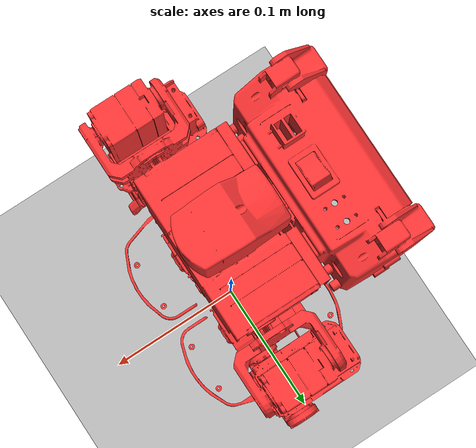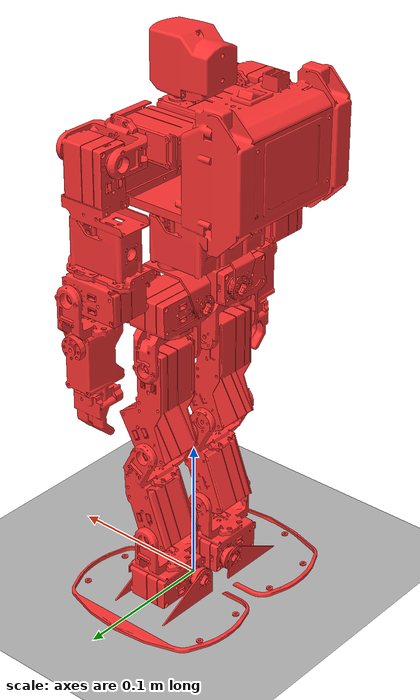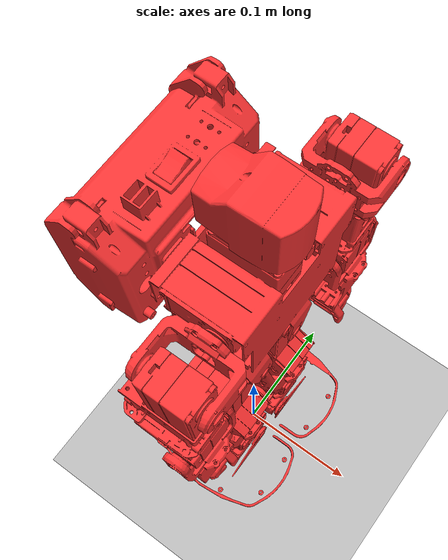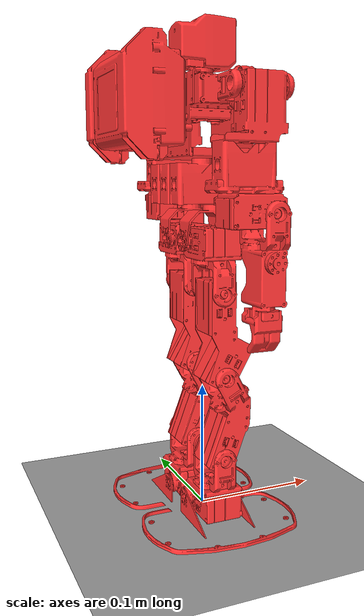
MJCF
<mujoco model="(KHR)">
  <!--
   This file is automatically created from ("KHR") model by eus2mjcf.l.
   -->
  <compiler angle="radian" convexhull="false"/>
  <option timestep="0.001" iterations="50" tolerance="1.000000e-10" solver="Newton" jacobian="dense" cone="pyramidal" density="1000" viscosity="0.0009" collision="predefined"/>
  <default>
    <geom condim="3" solref="0.02 1.0"/>
    <joint frictionloss="0.2" armature="0.011"/>
  </default>
  <size nconmax="1000" njmax="5000" nstack="1000000"/>
  <worldbody>
    <geom name="floor" pos="0 0 0" size="3 3 1" type="plane" material="matplane" condim="3"/>
  </worldbody>
  <asset>
    <texture name="texplane" type="2d" builtin="checker" rgb1=".8 .8 .8" rgb2=".6 0.6 0.6" width="512" height="512" mark="cross" markrgb=".8 .8 .8"/>
    <material name="matplane" reflectance="0.3" texture="texplane" texrepeat="1 1" texuniform="true"/>
  </asset>
  <include file="KHR/KHRinc.xml"/>
</mujoco>

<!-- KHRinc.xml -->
<mujocoinclude>
  <!--
   This file is automatically created from "KHR" model by eus2mjcf.l.
   -->
  <asset>
    <mesh name="KHR_BODY_0_mesh" file="KHR/BODY_0_mesh.stl"/>
    <mesh name="KHR_RLEG_LINK0_0_mesh" file="KHR/RLEG_LINK0_0_mesh.stl"/>
    <mesh name="KHR_RLEG_LINK1_0_mesh" file="KHR/RLEG_LINK1_0_mesh.stl"/>
    <mesh name="KHR_RLEG_LINK2_0_mesh" file="KHR/RLEG_LINK2_0_mesh.stl"/>
    <mesh name="KHR_RLEG_LINK3_0_mesh" file="KHR/RLEG_LINK3_0_mesh.stl"/>
    <mesh name="KHR_RLEG_LINK4_0_mesh" file="KHR/RLEG_LINK4_0_mesh.stl"/>
    <mesh name="KHR_LLEG_LINK0_0_mesh" file="KHR/LLEG_LINK0_0_mesh.stl"/>
    <mesh name="KHR_LLEG_LINK1_0_mesh" file="KHR/LLEG_LINK1_0_mesh.stl"/>
    <mesh name="KHR_LLEG_LINK2_0_mesh" file="KHR/LLEG_LINK2_0_mesh.stl"/>
    <mesh name="KHR_LLEG_LINK3_0_mesh" file="KHR/LLEG_LINK3_0_mesh.stl"/>
    <mesh name="KHR_LLEG_LINK4_0_mesh" file="KHR/LLEG_LINK4_0_mesh.stl"/>
    <mesh name="KHR_RARM_LINK0_0_mesh" file="KHR/RARM_LINK0_0_mesh.stl"/>
    <mesh name="KHR_RARM_LINK1_0_mesh" file="KHR/RARM_LINK1_0_mesh.stl"/>
    <mesh name="KHR_RARM_LINK2_0_mesh" file="KHR/RARM_LINK2_0_mesh.stl"/>
    <mesh name="KHR_LARM_LINK0_0_mesh" file="KHR/LARM_LINK0_0_mesh.stl"/>
    <mesh name="KHR_LARM_LINK1_0_mesh" file="KHR/LARM_LINK1_0_mesh.stl"/>
    <mesh name="KHR_LARM_LINK2_0_mesh" file="KHR/LARM_LINK2_0_mesh.stl"/>
    <mesh name="KHR_HEAD_LINK0_0_mesh" file="KHR/HEAD_LINK0_0_mesh.stl"/>
  </asset>
  <worldbody>
    <body name="KHR/BODY" pos="0.0 0.0 0.283" quat="1.0 0.0 0.0 0.0">
      <inertial pos="-0.025246 0.0 0.017693" quat="1.0 0.0 0.0 0.0" mass="0.3375" diaginertia="0.014489 0.013812 0.009164"/>
      <joint name="KHR/root" type="free"/>
      <geom pos="0 0 0" type="mesh" mesh="KHR_BODY_0_mesh" rgba="1.0 0.2 0.2 1.0"/>
      <body name="KHR/RLEG_LINK0" pos="0.018517 -0.017 -0.06265">
        <inertial pos="-0.021734 -0.011506 -0.014091" mass="0.0699" fullinertia="1.677061e-05 1.593509e-05 8.901412e-06 3.090629e-07 -9.063682e-08 -1.858810e-07"/>
        <joint name="KHR/rleg_joint0" pos="0 0 0" axis="1.0 0.0 0.0" limited="true" range="-0.499513 0.679172" damping="0.2"/>
        <geom pos="0 0 0" type="mesh" mesh="KHR_RLEG_LINK0_0_mesh" rgba="1.0 0.2 0.2 1.0"/>
        <body name="KHR/RLEG_LINK1" pos="-0.0192 0.00825 -0.0385">
          <inertial pos="0.002871 -0.018978 -0.033258" mass="0.1031" fullinertia="5.536819e-05 5.496839e-05 1.572300e-05 1.797274e-07 1.504320e-07 -1.263233e-07"/>
          <joint name="KHR/rleg_joint1" pos="0 0 0" axis="0.0 1.0 0.0" limited="true" range="-2.07933 2.08228" damping="0.2"/>
          <geom pos="0 0 0" type="mesh" mesh="KHR_RLEG_LINK1_0_mesh" rgba="1.0 0.2 0.2 1.0"/>
          <body name="KHR/RLEG_LINK2" pos="4.440892e-19 0.0 -0.065">
            <inertial pos="0.003613 -0.016674 -0.031461" mass="0.0694" fullinertia="3.881635e-05 3.515624e-05 1.384805e-05 -4.036985e-09 -8.683362e-07 -8.444422e-08"/>
            <joint name="KHR/rleg_joint2" pos="0 0 0" axis="0.0 1.0 0.0" limited="true" range="-1.06499 2.80504" damping="0.2"/>
            <geom pos="0 0 0" type="mesh" mesh="KHR_RLEG_LINK2_0_mesh" rgba="1.0 0.2 0.2 1.0"/>
            <body name="KHR/RLEG_LINK3" pos="0.0 0.0 -0.065">
              <inertial pos="-0.000386 -0.016666 -0.024369" mass="0.0691" fullinertia="2.079107e-05 1.818282e-05 1.182965e-05 -1.954314e-07 9.835033e-08 8.030392e-08"/>
              <joint name="KHR/rleg_joint3" pos="0 0 0" axis="0.0 1.0 0.0" limited="true" range="-1.6941 2.45985" damping="0.2"/>
              <geom pos="0 0 0" type="mesh" mesh="KHR_RLEG_LINK3_0_mesh" rgba="1.0 0.2 0.2 1.0"/>
              <body name="KHR/RLEG_LINK4" pos="0.019683 -0.00825 -0.0385">
                <inertial pos="-0.020862 -0.020902 -0.013459" mass="0.0419" fullinertia="1.244167e-05 3.000214e-05 3.927426e-05 -6.004987e-07 1.042822e-07 -5.792671e-07"/>
                <joint name="KHR/rleg_joint4" pos="0 0 0" axis="1.0 0.0 0.0" limited="true" range="-0.38347 2.07109" damping="0.2"/>
                <geom pos="0 0 0" type="mesh" mesh="KHR_RLEG_LINK4_0_mesh" rgba="1.0 0.2 0.2 1.0"/>
              </body>
            </body>
          </body>
        </body>
      </body>
      <body name="KHR/LLEG_LINK0" pos="0.018517 0.017 -0.06265">
        <inertial pos="-0.021734 0.011506 -0.014091" mass="0.0699" fullinertia="1.691904e-05 1.589483e-05 9.628598e-06 -8.674622e-08 -1.217244e-08 -5.717395e-07"/>
        <joint name="KHR/lleg_joint0" pos="0 0 0" axis="1.0 0.0 0.0" limited="true" range="-0.679172 0.499513" damping="0.2"/>
        <geom pos="0 0 0" type="mesh" mesh="KHR_LLEG_LINK0_0_mesh" rgba="1.0 0.2 0.2 1.0"/>
        <body name="KHR/LLEG_LINK1" pos="-0.0192 -0.00825 -0.0385">
          <inertial pos="0.002871 0.018978 -0.033258" mass="0.1031" fullinertia="5.516745e-05 5.510010e-05 1.421070e-05 -4.331385e-07 1.607866e-07 2.792756e-08"/>
          <joint name="KHR/lleg_joint1" pos="0 0 0" axis="0.0 1.0 0.0" limited="true" range="-2.07933 2.08228" damping="0.2"/>
          <geom pos="0 0 0" type="mesh" mesh="KHR_LLEG_LINK1_0_mesh" rgba="1.0 0.2 0.2 1.0"/>
          <body name="KHR/LLEG_LINK2" pos="4.440892e-19 0.0 -0.065">
            <inertial pos="0.003613 0.016674 -0.031461" mass="0.0694" fullinertia="3.675002e-05 3.375774e-05 1.292444e-05 -1.698369e-07 -8.700617e-07 -1.300457e-07"/>
            <joint name="KHR/lleg_joint2" pos="0 0 0" axis="0.0 1.0 0.0" limited="true" range="-1.06499 2.80504" damping="0.2"/>
            <geom pos="0 0 0" type="mesh" mesh="KHR_LLEG_LINK2_0_mesh" rgba="1.0 0.2 0.2 1.0"/>
            <body name="KHR/LLEG_LINK3" pos="0.0 0.0 -0.065">
              <inertial pos="-0.000386 0.016666 -0.024369" mass="0.0691" fullinertia="1.897253e-05 1.736952e-05 1.229215e-05 -5.304641e-08 -3.889940e-07 -1.934696e-08"/>
              <joint name="KHR/lleg_joint3" pos="0 0 0" axis="0.0 1.0 0.0" limited="true" range="-1.6941 2.45985" damping="0.2"/>
              <geom pos="0 0 0" type="mesh" mesh="KHR_LLEG_LINK3_0_mesh" rgba="1.0 0.2 0.2 1.0"/>
              <body name="KHR/LLEG_LINK4" pos="0.019683 0.00825 -0.0385">
                <inertial pos="-0.020862 0.020902 -0.013459" mass="0.0419" fullinertia="1.314386e-05 2.756289e-05 3.784923e-05 -3.433047e-09 -2.132639e-07 3.998076e-07"/>
                <joint name="KHR/lleg_joint4" pos="0 0 0" axis="1.0 0.0 0.0" limited="true" range="-2.07109 0.38347" damping="0.2"/>
                <geom pos="0 0 0" type="mesh" mesh="KHR_LLEG_LINK4_0_mesh" rgba="1.0 0.2 0.2 1.0"/>
              </body>
            </body>
          </body>
        </body>
      </body>
      <body name="KHR/RARM_LINK0" pos="0.0115 -0.049 0.0474">
        <inertial pos="0.0 -0.014576 0.0" mass="0.0153" fullinertia="1.676300e-06 2.263070e-06 2.745542e-06 -1.676607e-08 -9.953316e-09 1.992639e-09"/>
        <joint name="KHR/rarm_joint0" pos="0 0 0" axis="0.0 1.0 0.0" limited="true" range="-3.14159 3.14159" damping="0.2"/>
        <geom pos="0 0 0" type="mesh" mesh="KHR_RARM_LINK0_0_mesh" rgba="1.0 0.2 0.2 1.0"/>
        <body name="KHR/RARM_LINK1" pos="0.01975 -0.0255 0.0">
          <inertial pos="-0.02697 0.000148 -0.050609" mass="0.1091" fullinertia="8.202454e-05 9.300714e-05 2.322636e-05 1.686368e-07 -2.811838e-06 1.004118e-06"/>
          <joint name="KHR/rarm_joint1" pos="0 0 0" axis="1.0 0.0 0.0" limited="true" range="-3.14159 3.14159" damping="0.2"/>
          <geom pos="0 0 0" type="mesh" mesh="KHR_RARM_LINK1_0_mesh" rgba="1.0 0.2 0.2 1.0"/>
          <body name="KHR/RARM_LINK2" pos="-0.0153 0.0197 -0.0875">
            <inertial pos="0.000525 -0.019115 -0.039067" mass="0.0315" fullinertia="2.015857e-05 1.836502e-05 4.027569e-06 -1.189855e-07 7.558438e-08 5.071892e-07"/>
            <joint name="KHR/rarm_joint2" pos="0 0 0" axis="0.0 1.0 0.0" limited="true" range="-3.14159 3.14159" damping="0.2"/>
            <geom pos="0 0 0" type="mesh" mesh="KHR_RARM_LINK2_0_mesh" rgba="1.0 0.2 0.2 1.0"/>
          </body>
        </body>
      </body>
      <body name="KHR/LARM_LINK0" pos="0.0115 0.049 0.0474">
        <inertial pos="0.0 0.014576 0.0" mass="0.0153" fullinertia="1.642384e-06 2.269218e-06 2.753356e-06 -4.398995e-09 2.131338e-08 -3.478219e-09"/>
        <joint name="KHR/larm_joint0" pos="0 0 0" axis="0.0 1.0 0.0" limited="true" range="-3.14159 3.14159" damping="0.2"/>
        <geom pos="0 0 0" type="mesh" mesh="KHR_LARM_LINK0_0_mesh" rgba="1.0 0.2 0.2 1.0"/>
        <body name="KHR/LARM_LINK1" pos="0.01975 0.0255 0.0">
          <inertial pos="-0.02697 -0.000148 -0.050609" mass="0.1091" fullinertia="8.956372e-05 0.000102 2.505552e-05 1.200601e-08 -3.451890e-06 -4.050433e-07"/>
          <joint name="KHR/larm_joint1" pos="0 0 0" axis="1.0 0.0 0.0" limited="true" range="-3.14159 3.14159" damping="0.2"/>
          <geom pos="0 0 0" type="mesh" mesh="KHR_LARM_LINK1_0_mesh" rgba="1.0 0.2 0.2 1.0"/>
          <body name="KHR/LARM_LINK2" pos="-0.0153 -0.0197 -0.0875">
            <inertial pos="0.000525 0.019115 -0.039067" mass="0.0315" fullinertia="2.063503e-05 1.949743e-05 3.506149e-06 6.635338e-08 1.858002e-07 -1.804730e-07"/>
            <joint name="KHR/larm_joint2" pos="0 0 0" axis="0.0 1.0 0.0" limited="true" range="-3.14159 3.14159" damping="0.2"/>
            <geom pos="0 0 0" type="mesh" mesh="KHR_LARM_LINK2_0_mesh" rgba="1.0 0.2 0.2 1.0"/>
          </body>
        </body>
      </body>
      <body name="KHR/HEAD_LINK0" pos="0.0 0.0 0.0644">
        <inertial pos="0.002048 0.0 0.020747" mass="0.0149" fullinertia="1.894980e-06 3.270175e-06 2.440342e-06 1.757507e-08 -5.796941e-08 1.693787e-08"/>
        <joint name="KHR/head_joint0" pos="0 0 0" axis="0.0 0.0 1.0" limited="true" range="-3.14159 3.14159" damping="0.2"/>
        <geom pos="0 0 0" type="mesh" mesh="KHR_HEAD_LINK0_0_mesh" rgba="1.0 0.2 0.2 1.0"/>
      </body>
    </body>
  </worldbody>
  <actuator>
    <position name="KHR/head_joint0" kp="10" joint="KHR/head_joint0"/>
    <position name="KHR/larm_joint0" kp="10" joint="KHR/larm_joint0"/>
    <position name="KHR/larm_joint1" kp="10" joint="KHR/larm_joint1"/>
    <position name="KHR/larm_joint2" kp="10" joint="KHR/larm_joint2"/>
    <position name="KHR/rarm_joint0" kp="10" joint="KHR/rarm_joint0"/>
    <position name="KHR/rarm_joint1" kp="10" joint="KHR/rarm_joint1"/>
    <position name="KHR/rarm_joint2" kp="10" joint="KHR/rarm_joint2"/>
    <position name="KHR/lleg_joint0" kp="10" joint="KHR/lleg_joint0"/>
    <position name="KHR/lleg_joint1" kp="10" joint="KHR/lleg_joint1"/>
    <position name="KHR/lleg_joint2" kp="10" joint="KHR/lleg_joint2"/>
    <position name="KHR/lleg_joint3" kp="10" joint="KHR/lleg_joint3"/>
    <position name="KHR/lleg_joint4" kp="10" joint="KHR/lleg_joint4"/>
    <position name="KHR/rleg_joint0" kp="10" joint="KHR/rleg_joint0"/>
    <position name="KHR/rleg_joint1" kp="10" joint="KHR/rleg_joint1"/>
    <position name="KHR/rleg_joint2" kp="10" joint="KHR/rleg_joint2"/>
    <position name="KHR/rleg_joint3" kp="10" joint="KHR/rleg_joint3"/>
    <position name="KHR/rleg_joint4" kp="10" joint="KHR/rleg_joint4"/>
  </actuator>
</mujocoinclude>
